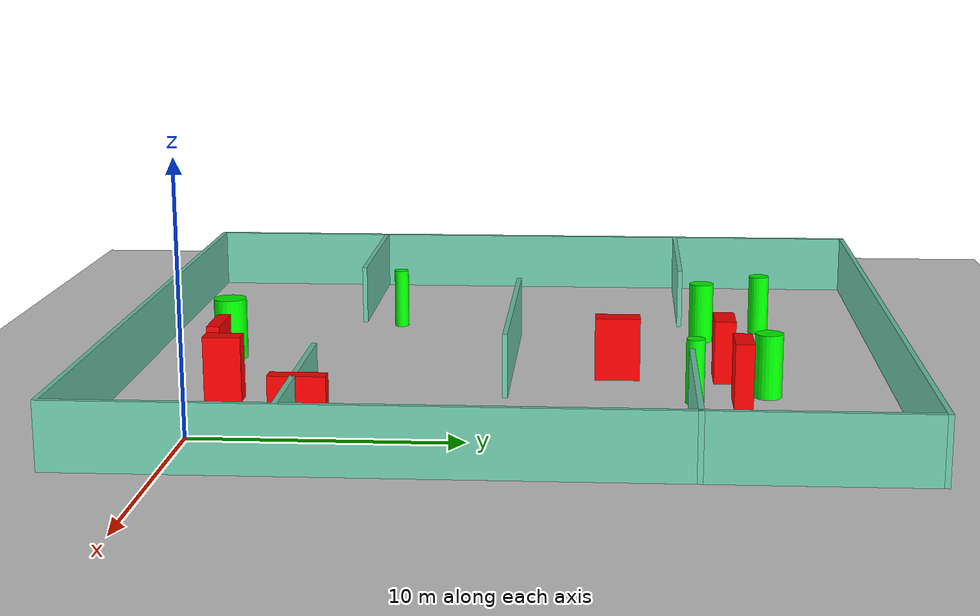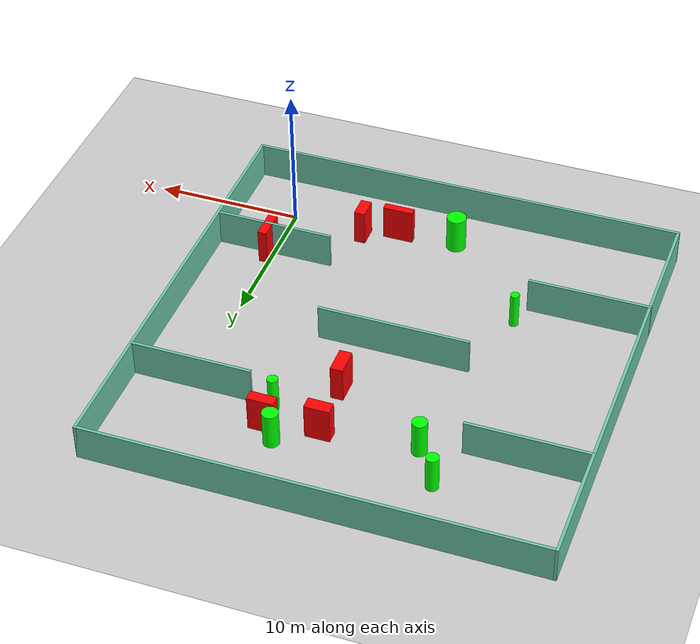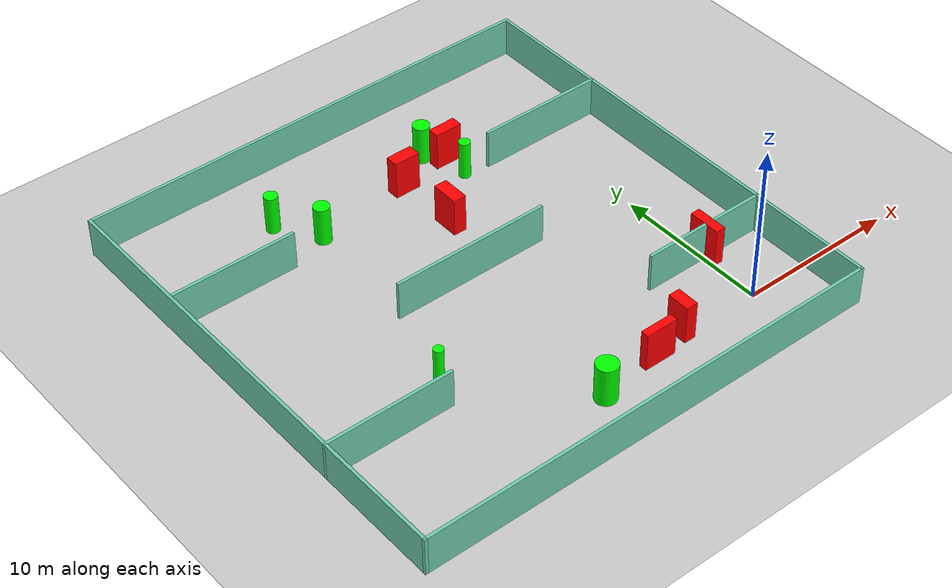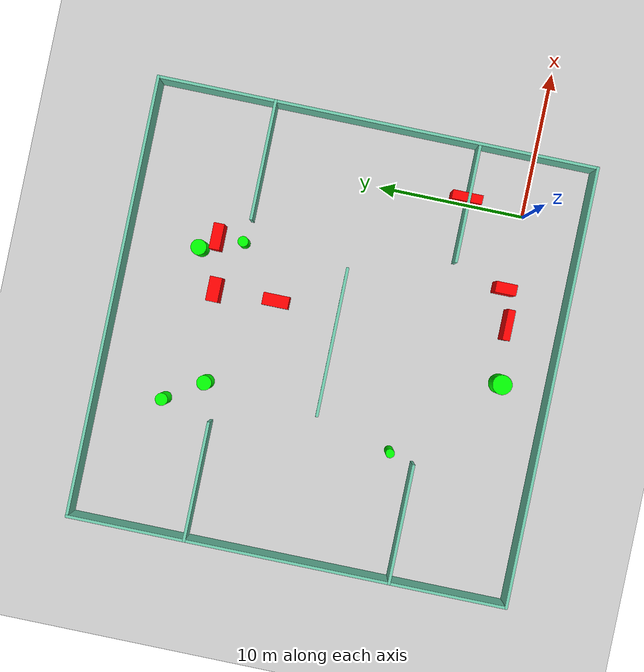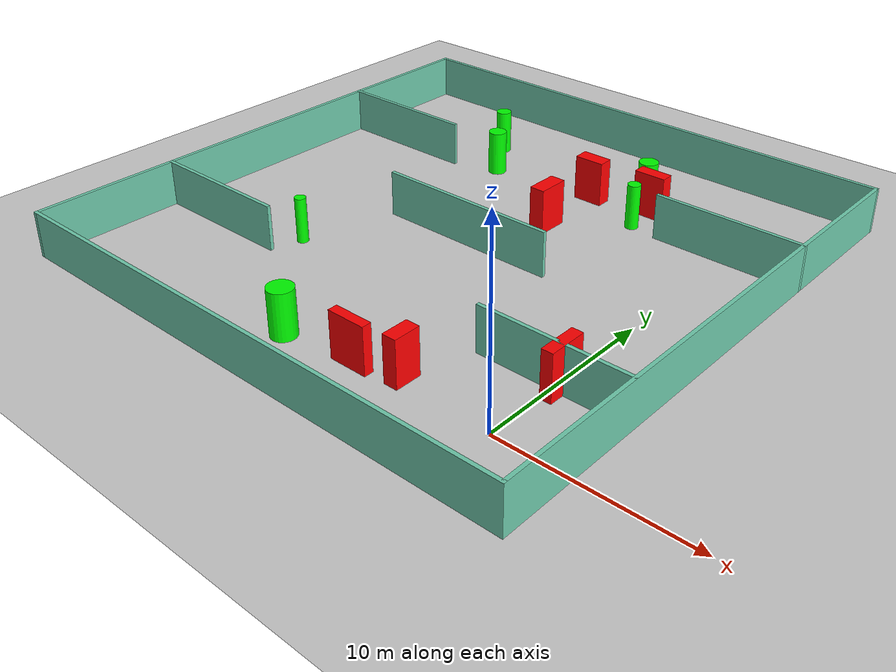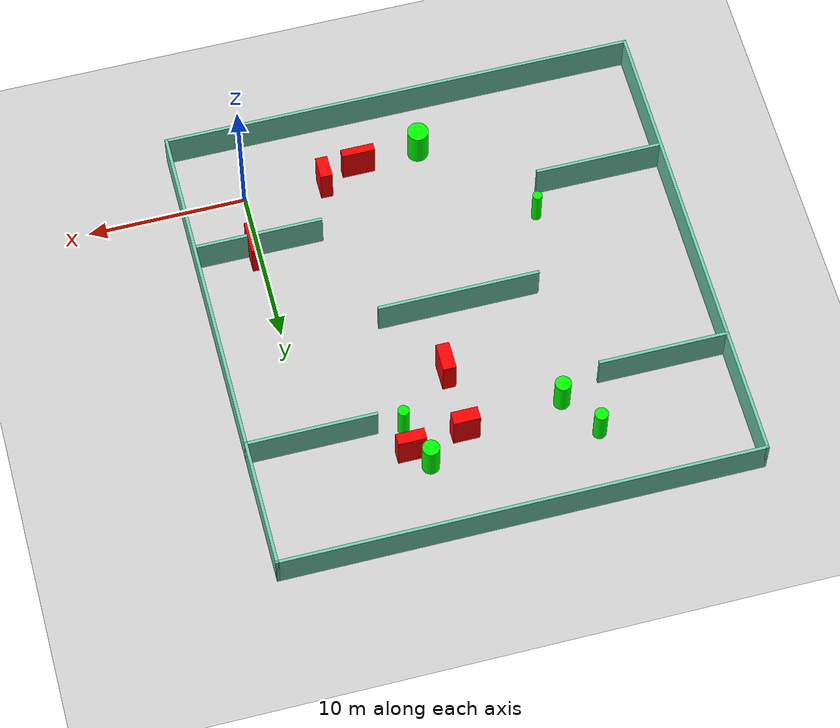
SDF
<sdf version="1.7">
 <world name="default">
  <light name="sun" type="directional">
   <pose>0 0 10 0 -0 0</pose>
   <diffuse>0.8 0.8 0.8 1</diffuse>
   <specular>0.2 0.2 0.2 1</specular>
   <attenuation>
    <range>1000</range>
    <constant>0.9</constant>
    <linear>0.01</linear>
    <quadratic>0.001</quadratic>
   </attenuation>
   <direction>-0.5 0.1 -0.9</direction>
   <spot><inner_angle>0</inner_angle><outer_angle>0</outer_angle><falloff>0</falloff></spot>
  </light>
  <model name="ground_plane">
   <static>1</static>
   <link name="link">
    <collision name="collision">
     <geometry><plane><normal>0 0 1</normal><size>100 100</size></plane></geometry>
     <surface>
      <contact><collide_bitmask>65535</collide_bitmask></contact>
      <friction><ode><mu>100</mu><mu2>50</mu2></ode></friction>
     </surface>
    </collision>
    <visual name="visual">
     <cast_shadows>0</cast_shadows>
     <geometry><plane><normal>0 0 1</normal><size>100 100</size></plane></geometry>
     <material>
      <script><uri>file://media/materials/scripts/gazebo.material</uri><name>Gazebo/Grey</name></script>
     </material>
    </visual>
   </link>
  </model>
  <gravity>0 0 -9.8</gravity>
  <magnetic_field>6e-06 2.3e-05 -4.2e-05</magnetic_field>
  <atmosphere type="adiabatic"/>
  <physics type="ode">
   <max_step_size>0.001</max_step_size>
   <real_time_factor>1</real_time_factor>
   <real_time_update_rate>1000</real_time_update_rate>
  </physics>
  <scene><ambient>0.4 0.4 0.4 1</ambient><background>0.7 0.7 0.7 1</background><shadows>1</shadows></scene>
  <spherical_coordinates>
   <surface_model>EARTH_WGS84</surface_model>
   <latitude_deg>0</latitude_deg>
   <longitude_deg>0</longitude_deg>
   <elevation>0</elevation>
   <heading_deg>0</heading_deg>
  </spherical_coordinates>
  <model name="my_base_walls">
   <link name="Wall_10">
    <collision name="Wall_10_Collision">
     <geometry><box><size>8.2 0.2 2.5</size></box></geometry>
     <pose>0 0 1.25 0 -0 0</pose>
    </collision>
    <visual name="Wall_10_Visual">
     <pose>0 0 1.25 0 -0 0</pose>
     <geometry><box><size>8.2 0.2 2.5</size></box></geometry>
     <material>
      <script><uri>file://media/materials/scripts/gazebo.material</uri><name>Gazebo/Grey</name></script>
      <ambient>0.435294 0.796078 0.67451 1</ambient>
     </material>
     <meta><layer>0</layer></meta>
    </visual>
    <pose>-11 -7 0 0 -0 0</pose>
   </link>
   <link name="Wall_12">
    <collision name="Wall_12_Collision">
     <geometry><box><size>8.2 0.2 2.5</size></box></geometry>
     <pose>0 0 1.25 0 -0 0</pose>
    </collision>
    <visual name="Wall_12_Visual">
     <pose>0 0 1.25 0 -0 0</pose>
     <geometry><box><size>8.2 0.2 2.5</size></box></geometry>
     <material>
      <script><uri>file://media/materials/scripts/gazebo.material</uri><name>Gazebo/Grey</name></script>
      <ambient>0.435294 0.796078 0.67451 1</ambient>
     </material>
     <meta><layer>0</layer></meta>
    </visual>
    <pose>-11 7 0 0 -0 0</pose>
   </link>
   <link name="Wall_14">
    <collision name="Wall_14_Collision">
     <geometry><box><size>8.2 0.2 2.5</size></box></geometry>
     <pose>0 0 1.25 0 -0 0</pose>
    </collision>
    <visual name="Wall_14_Visual">
     <pose>0 0 1.25 0 -0 0</pose>
     <geometry><box><size>8.2 0.2 2.5</size></box></geometry>
     <material>
      <script><uri>file://media/materials/scripts/gazebo.material</uri><name>Gazebo/Grey</name></script>
      <ambient>0.435294 0.796078 0.67451 1</ambient>
     </material>
     <meta><layer>0</layer></meta>
    </visual>
    <pose>11 7 0 0 -0 3.14159</pose>
   </link>
   <link name="Wall_16">
    <collision name="Wall_16_Collision">
     <geometry><box><size>10.2 0.2 2.5</size></box></geometry>
     <pose>0 0 1.25 0 -0 0</pose>
    </collision>
    <visual name="Wall_16_Visual">
     <pose>0 0 1.25 0 -0 0</pose>
     <geometry><box><size>10.2 0.2 2.5</size></box></geometry>
     <material>
      <script><uri>file://media/materials/scripts/gazebo.material</uri><name>Gazebo/Grey</name></script>
      <ambient>0.435294 0.796078 0.67451 1</ambient>
     </material>
     <meta><layer>0</layer></meta>
    </visual>
    <pose>0 0 0 0 -0 3.14159</pose>
   </link>
   <link name="Wall_2">
    <collision name="Wall_2_Collision">
     <geometry><box><size>30.2 0.2 2.5</size></box></geometry>
     <pose>0 0 1.25 0 -0 0</pose>
    </collision>
    <visual name="Wall_2_Visual">
     <pose>0 0 1.25 0 -0 0</pose>
     <geometry><box><size>30.2 0.2 2.5</size></box></geometry>
     <material>
      <script><uri>file://media/materials/scripts/gazebo.material</uri><name>Gazebo/Grey</name></script>
      <ambient>0.435294 0.796078 0.67451 1</ambient>
     </material>
     <meta><layer>0</layer></meta>
    </visual>
    <pose>0 -15 0 0 -0 3.14159</pose>
   </link>
   <link name="Wall_3">
    <collision name="Wall_3_Collision">
     <geometry><box><size>30.2 0.2 2.5</size></box></geometry>
     <pose>0 0 1.25 0 -0 0</pose>
    </collision>
    <visual name="Wall_3_Visual">
     <pose>0 0 1.25 0 -0 0</pose>
     <geometry><box><size>30.2 0.2 2.5</size></box></geometry>
     <material>
      <script><uri>file://media/materials/scripts/gazebo.material</uri><name>Gazebo/Grey</name></script>
      <ambient>0.435294 0.796078 0.67451 1</ambient>
     </material>
     <meta><layer>0</layer></meta>
    </visual>
    <pose>-15 0 0 0 -0 1.5708</pose>
   </link>
   <link name="Wall_4">
    <collision name="Wall_4_Collision">
     <geometry><box><size>30.2 0.2 2.5</size></box></geometry>
     <pose>0 0 1.25 0 -0 0</pose>
    </collision>
    <visual name="Wall_4_Visual">
     <pose>0 0 1.25 0 -0 0</pose>
     <geometry><box><size>30.2 0.2 2.5</size></box></geometry>
     <material>
      <script><uri>file://media/materials/scripts/gazebo.material</uri><name>Gazebo/Grey</name></script>
      <ambient>0.435294 0.796078 0.67451 1</ambient>
     </material>
     <meta><layer>0</layer></meta>
    </visual>
    <pose>0 15 0 0 -0 0</pose>
   </link>
   <link name="Wall_6">
    <collision name="Wall_6_Collision">
     <geometry><box><size>30.2 0.2 2.5</size></box></geometry>
     <pose>0 0 1.25 0 -0 0</pose>
    </collision>
    <visual name="Wall_6_Visual">
     <pose>0 0 1.25 0 -0 0</pose>
     <geometry><box><size>30.2 0.2 2.5</size></box></geometry>
     <material>
      <script><uri>file://media/materials/scripts/gazebo.material</uri><name>Gazebo/Grey</name></script>
      <ambient>0.435294 0.796078 0.67451 1</ambient>
     </material>
     <meta><layer>0</layer></meta>
    </visual>
    <pose>15 0 0 0 -0 1.5708</pose>
   </link>
   <link name="Wall_8">
    <collision name="Wall_8_Collision">
     <geometry><box><size>8.2 0.2 2.5</size></box></geometry>
     <pose>0 0 1.25 0 -0 0</pose>
    </collision>
    <visual name="Wall_8_Visual">
     <pose>0 0 1.25 0 -0 0</pose>
     <geometry><box><size>8.2 0.2 2.5</size></box></geometry>
     <material>
      <script><uri>file://media/materials/scripts/gazebo.material</uri><name>Gazebo/Grey</name></script>
      <ambient>0.435294 0.796078 0.67451 1</ambient>
     </material>
     <meta><layer>0</layer></meta>
    </visual>
    <pose>11 -7 0 0 -0 3.14159</pose>
   </link>
   <static>1</static>
   <pose>-11 11 0 0 -0 0</pose>
  </model>
  <model name="cylinder1">
   <static>1</static>
   <link name="link">
    <inertial>
     <mass>1</mass>
     <inertia><ixx>0.5</ixx><ixy>0</ixy><ixz>0</ixz><iyy>0.5</iyy><iyz>0</iyz><izz>1</izz></inertia>
    </inertial>
    <collision name="collision">
     <geometry><cylinder><radius>0.5344582767236021</radius><length>2.5</length></cylinder></geometry>
    </collision>
    <visual name="visual">
     <geometry><cylinder><radius>0.5344582767236021</radius><length>2.5</length></cylinder></geometry>
     <material>
      <ambient>0 1 0 1</ambient>
      <diffuse>0 1 0 1</diffuse>
      <specular>0.1 0.1 0.1 1</specular>
      <emissive>0 0 0 0</emissive>
     </material>
    </visual>
   </link>
   <pose>-6.60541851072807 21.03842531969825 1.25 0 0 0</pose>
  </model>
  <model name="cylinder2">
   <static>1</static>
   <link name="link">
    <inertial>
     <mass>1</mass>
     <inertia><ixx>0.5</ixx><ixy>0</ixy><ixz>0</ixz><iyy>0.5</iyy><iyz>0</iyz><izz>1</izz></inertia>
    </inertial>
    <collision name="collision">
     <geometry><cylinder><radius>0.5040623602046823</radius><length>2.5</length></cylinder></geometry>
    </collision>
    <visual name="visual">
     <geometry><cylinder><radius>0.5040623602046823</radius><length>2.5</length></cylinder></geometry>
     <material>
      <ambient>0 1 0 1</ambient>
      <diffuse>0 1 0 1</diffuse>
      <specular>0.1 0.1 0.1 1</specular>
      <emissive>0 0 0 0</emissive>
     </material>
    </visual>
   </link>
   <pose>-15.41218692459079 18.83607713135787 1.25 0 0 0</pose>
  </model>
  <model name="cylinder3">
   <static>1</static>
   <link name="link">
    <inertial>
     <mass>1</mass>
     <inertia><ixx>0.5</ixx><ixy>0</ixy><ixz>0</ixz><iyy>0.5</iyy><iyz>0</iyz><izz>1</izz></inertia>
    </inertial>
    <collision name="collision">
     <geometry><cylinder><radius>0.30507407744689186</radius><length>2.5</length></cylinder></geometry>
    </collision>
    <visual name="visual">
     <geometry><cylinder><radius>0.30507407744689186</radius><length>2.5</length></cylinder></geometry>
     <material>
      <ambient>0 1 0 1</ambient>
      <diffuse>0 1 0 1</diffuse>
      <specular>0.1 0.1 0.1 1</specular>
      <emissive>0 0 0 0</emissive>
     </material>
    </visual>
   </link>
   <pose>-17.484945860496943 5.7011547109831415 1.25 0 0 0</pose>
  </model>
  <model name="cylinder4">
   <static>1</static>
   <link name="link">
    <inertial>
     <mass>1</mass>
     <inertia><ixx>0.5</ixx><ixy>0</ixy><ixz>0</ixz><iyy>0.5</iyy><iyz>0</iyz><izz>1</izz></inertia>
    </inertial>
    <collision name="collision">
     <geometry><cylinder><radius>0.3560084266385187</radius><length>2.5</length></cylinder></geometry>
    </collision>
    <visual name="visual">
     <geometry><cylinder><radius>0.3560084266385187</radius><length>2.5</length></cylinder></geometry>
     <material>
      <ambient>0 1 0 1</ambient>
      <diffuse>0 1 0 1</diffuse>
      <specular>0.1 0.1 0.1 1</specular>
      <emissive>0 0 0 0</emissive>
     </material>
    </visual>
   </link>
   <pose>-5.634170791254373 18.2089831034058 1.25 0 0 0</pose>
  </model>
  <model name="cylinder5">
   <static>1</static>
   <link name="link">
    <inertial>
     <mass>1</mass>
     <inertia><ixx>0.5</ixx><ixy>0</ixy><ixz>0</ixz><iyy>0.5</iyy><iyz>0</iyz><izz>1</izz></inertia>
    </inertial>
    <collision name="collision">
     <geometry><cylinder><radius>0.668645779201086</radius><length>2.5</length></cylinder></geometry>
    </collision>
    <visual name="visual">
     <geometry><cylinder><radius>0.668645779201086</radius><length>2.5</length></cylinder></geometry>
     <material>
      <ambient>0 1 0 1</ambient>
      <diffuse>0 1 0 1</diffuse>
      <specular>0.1 0.1 0.1 1</specular>
      <emissive>0 0 0 0</emissive>
     </material>
    </visual>
   </link>
   <pose>-11.471914039937987 -0.7058392818773012 1.25 0 0 0</pose>
  </model>
  <model name="cylinder6">
   <static>1</static>
   <link name="link">
    <inertial>
     <mass>1</mass>
     <inertia><ixx>0.5</ixx><ixy>0</ixy><ixz>0</ixz><iyy>0.5</iyy><iyz>0</iyz><izz>1</izz></inertia>
    </inertial>
    <collision name="collision">
     <geometry><cylinder><radius>0.42529501028298533</radius><length>2.5</length></cylinder></geometry>
    </collision>
    <visual name="visual">
     <geometry><cylinder><radius>0.42529501028298533</radius><length>2.5</length></cylinder></geometry>
     <material>
      <ambient>0 1 0 1</ambient>
      <diffuse>0 1 0 1</diffuse>
      <specular>0.1 0.1 0.1 1</specular>
      <emissive>0 0 0 0</emissive>
     </material>
    </visual>
   </link>
   <pose>-17.06765498929539 21.396828503976423 1.25 0 0 0</pose>
  </model>
  <model name="box1">
   <static>1</static>
   <link name="link">
    <inertial>
     <mass>1</mass>
     <inertia><ixx>0.083</ixx><ixy>0</ixy><ixz>0</ixz><iyy>0.083</iyy><iyz>0</iyz><izz>0.083</izz></inertia>
    </inertial>
    <collision name="collision">
     <geometry><box><size>2.088009413045678 0.507975461996804 2.5</size></box></geometry>
    </collision>
    <visual name="visual">
     <geometry><box><size>2.088009413045678 0.507975461996804 2.5</size></box></geometry>
     <material>
      <ambient>1 0 0 1</ambient>
      <diffuse>1 0 0 1</diffuse>
      <specular>0.1 0.1 0.1 1</specular>
      <emissive>0 0 0 0</emissive>
     </material>
    </visual>
    <sensor name="my_contact" type="contact">
     <contact><collision>box_collision</collision><topic>__default_topic__</topic></contact>
    </sensor>
   </link>
   <pose>-7.469454506141414 -0.3270756553664129 1.25 0 0 0</pose>
  </model>
  <model name="box2">
   <static>1</static>
   <link name="link">
    <inertial>
     <mass>1</mass>
     <inertia><ixx>0.083</ixx><ixy>0</ixy><ixz>0</ixz><iyy>0.083</iyy><iyz>0</iyz><izz>0.083</izz></inertia>
    </inertial>
    <collision name="collision">
     <geometry><box><size>0.7528551547418052 1.43928478902015 2.5</size></box></geometry>
    </collision>
    <visual name="visual">
     <geometry><box><size>0.7528551547418052 1.43928478902015 2.5</size></box></geometry>
     <material>
      <ambient>1 0 0 1</ambient>
      <diffuse>1 0 0 1</diffuse>
      <specular>0.1 0.1 0.1 1</specular>
      <emissive>0 0 0 0</emissive>
     </material>
    </visual>
    <sensor name="my_contact" type="contact">
     <contact><collision>box_collision</collision><topic>__default_topic__</topic></contact>
    </sensor>
   </link>
   <pose>-5.115673642427097 0.34872083883265637 1.25 0 0 0</pose>
  </model>
  <model name="box3">
   <static>1</static>
   <link name="link">
    <inertial>
     <mass>1</mass>
     <inertia><ixx>0.083</ixx><ixy>0</ixy><ixz>0</ixz><iyy>0.083</iyy><iyz>0</iyz><izz>0.083</izz></inertia>
    </inertial>
    <collision name="collision">
     <geometry><box><size>0.6093167133468833 2.069258559786822 2.5</size></box></geometry>
    </collision>
    <visual name="visual">
     <geometry><box><size>0.6093167133468833 2.069258559786822 2.5</size></box></geometry>
     <material>
      <ambient>1 0 0 1</ambient>
      <diffuse>1 0 0 1</diffuse>
      <specular>0.1 0.1 0.1 1</specular>
      <emissive>0 0 0 0</emissive>
     </material>
    </visual>
    <sensor name="my_contact" type="contact">
     <contact><collision>box_collision</collision><topic>__default_topic__</topic></contact>
    </sensor>
   </link>
   <pose>0.3456618322891778 4.138247232291899 1.25 0 0 0</pose>
  </model>
  <model name="box4">
   <static>1</static>
   <link name="link">
    <inertial>
     <mass>1</mass>
     <inertia><ixx>0.083</ixx><ixy>0</ixy><ixz>0</ixz><iyy>0.083</iyy><iyz>0</iyz><izz>0.083</izz></inertia>
    </inertial>
    <collision name="collision">
     <geometry><box><size>1.7746536847071943 0.7244023856278317 2.5</size></box></geometry>
    </collision>
    <visual name="visual">
     <geometry><box><size>1.7746536847071943 0.7244023856278317 2.5</size></box></geometry>
     <material>
      <ambient>1 0 0 1</ambient>
      <diffuse>1 0 0 1</diffuse>
      <specular>0.1 0.1 0.1 1</specular>
      <emissive>0 0 0 0</emissive>
     </material>
    </visual>
    <sensor name="my_contact" type="contact">
     <contact><collision>box_collision</collision><topic>__default_topic__</topic></contact>
    </sensor>
   </link>
   <pose>-5.649553964969742 20.00719689007905 1.25 0 0 0</pose>
  </model>
  <model name="box5">
   <static>1</static>
   <link name="link">
    <inertial>
     <mass>1</mass>
     <inertia><ixx>0.083</ixx><ixy>0</ixy><ixz>0</ixz><iyy>0.083</iyy><iyz>0</iyz><izz>0.083</izz></inertia>
    </inertial>
    <collision name="collision">
     <geometry><box><size>1.6718988222883524 0.8298796295232806 2.5</size></box></geometry>
    </collision>
    <visual name="visual">
     <geometry><box><size>1.6718988222883524 0.8298796295232806 2.5</size></box></geometry>
     <material>
      <ambient>1 0 0 1</ambient>
      <diffuse>1 0 0 1</diffuse>
      <specular>0.1 0.1 0.1 1</specular>
      <emissive>0 0 0 0</emissive>
     </material>
    </visual>
    <sensor name="my_contact" type="contact">
     <contact><collision>box_collision</collision><topic>__default_topic__</topic></contact>
    </sensor>
   </link>
   <pose>-9.154431872054076 19.47249460923983 1.25 0 0 0</pose>
  </model>
  <model name="box6">
   <static>1</static>
   <link name="link">
    <inertial>
     <mass>1</mass>
     <inertia><ixx>0.083</ixx><ixy>0</ixy><ixz>0</ixz><iyy>0.083</iyy><iyz>0</iyz><izz>0.083</izz></inertia>
    </inertial>
    <collision name="collision">
     <geometry><box><size>0.8392143747926155 1.7758350011459794 2.5</size></box></geometry>
    </collision>
    <visual name="visual">
     <geometry><box><size>0.8392143747926155 1.7758350011459794 2.5</size></box></geometry>
     <material>
      <ambient>1 0 0 1</ambient>
      <diffuse>1 0 0 1</diffuse>
      <specular>0.1 0.1 0.1 1</specular>
      <emissive>0 0 0 0</emissive>
     </material>
    </visual>
    <sensor name="my_contact" type="contact">
     <contact><collision>box_collision</collision><topic>__default_topic__</topic></contact>
    </sensor>
   </link>
   <pose>-9.058394141735704 15.273116612847968 1.25 0 0 0</pose>
  </model>
 </world>
</sdf>
